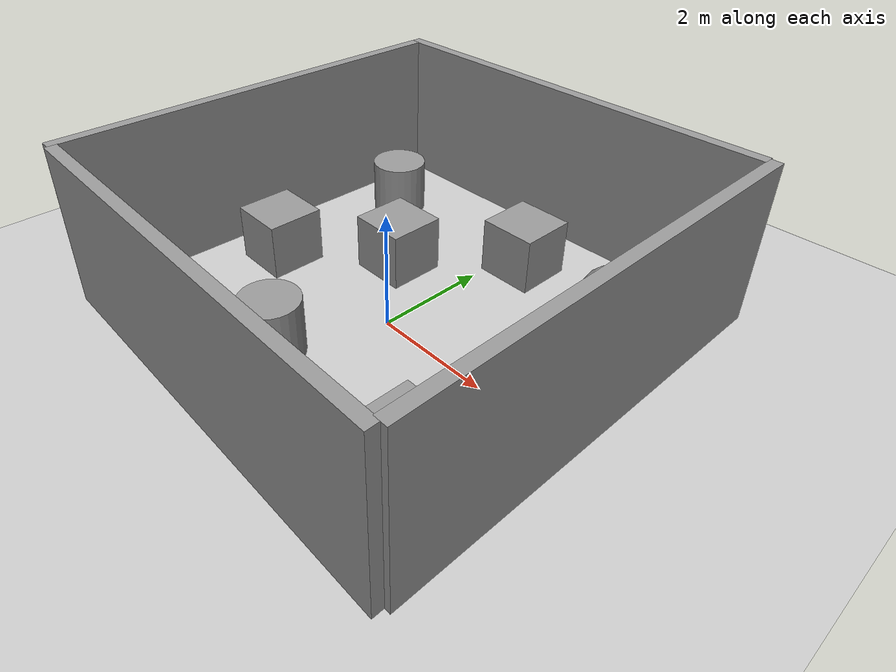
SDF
<sdf version="1.7">
 <world name="default">
  <light name="sun" type="directional">
   <pose>0 0 10 0 -0 0</pose>
   <diffuse>0.8 0.8 0.8 1</diffuse>
   <specular>0.2 0.2 0.2 1</specular>
   <attenuation>
    <range>1000</range>
    <constant>0.9</constant>
    <linear>0.01</linear>
    <quadratic>0.001</quadratic>
   </attenuation>
   <direction>-0.5 0.1 -0.9</direction>
   <spot><inner_angle>0</inner_angle><outer_angle>0</outer_angle><falloff>0</falloff></spot>
  </light>
  <model name="ground_plane">
   <static>1</static>
   <link name="link">
    <collision name="collision">
     <geometry><plane><normal>0 0 1</normal><size>100 100</size></plane></geometry>
     <surface>
      <contact><collide_bitmask>65535</collide_bitmask></contact>
      <friction><ode><mu>100</mu><mu2>50</mu2></ode></friction>
     </surface>
    </collision>
    <visual name="visual">
     <cast_shadows>0</cast_shadows>
     <geometry><plane><normal>0 0 1</normal><size>100 100</size></plane></geometry>
     <material>
      <script><uri>file://media/materials/scripts/gazebo.material</uri><name>Gazebo/Grey</name></script>
     </material>
    </visual>
   </link>
  </model>
  <gravity>0 0 -9.8</gravity>
  <magnetic_field>6e-06 2.3e-05 -4.2e-05</magnetic_field>
  <atmosphere type="adiabatic"/>
  <physics type="ode">
   <max_step_size>0.001</max_step_size>
   <real_time_factor>1</real_time_factor>
   <real_time_update_rate>1000</real_time_update_rate>
  </physics>
  <scene><ambient>0.4 0.4 0.4 1</ambient><background>0.7 0.7 0.7 1</background><shadows>1</shadows></scene>
  <spherical_coordinates>
   <surface_model>EARTH_WGS84</surface_model>
   <latitude_deg>0</latitude_deg>
   <longitude_deg>0</longitude_deg>
   <elevation>0</elevation>
   <heading_deg>0</heading_deg>
  </spherical_coordinates>
  <model name="grey_wall">
   <static>1</static>
   <link name="link">
    <pose>0 0 1.4 0 -0 0</pose>
    <collision name="collision"><geometry><box><size>7.5 0.2 2.8</size></box></geometry></collision>
    <visual name="visual">
     <cast_shadows>0</cast_shadows>
     <geometry><box><size>7.5 0.2 2.8</size></box></geometry>
     <material>
      <script>
       <uri>model://grey_wall/materials/scripts</uri>
       <uri>model://grey_wall/materials/textures</uri>
       <name>vrc/grey_wall</name>
      </script>
     </material>
    </visual>
   </link>
   <pose>-0.137787 -3.25184 0 0 -0 0</pose>
  </model>
  <model name="grey_wall_clone">
   <static>1</static>
   <link name="link">
    <pose>0 0 1.4 0 -0 0</pose>
    <collision name="collision"><geometry><box><size>7.5 0.2 2.8</size></box></geometry></collision>
    <visual name="visual">
     <cast_shadows>0</cast_shadows>
     <geometry><box><size>7.5 0.2 2.8</size></box></geometry>
     <material>
      <script>
       <uri>model://grey_wall/materials/scripts</uri>
       <uri>model://grey_wall/materials/textures</uri>
       <name>vrc/grey_wall</name>
      </script>
     </material>
    </visual>
   </link>
   <pose>-3.93601 0.44335 0 0 0 -1.58129</pose>
  </model>
  <model name="grey_wall_clone_0">
   <static>1</static>
   <link name="link">
    <pose>0 0 1.4 0 -0 0</pose>
    <collision name="collision"><geometry><box><size>7.5 0.2 2.8</size></box></geometry></collision>
    <visual name="visual">
     <cast_shadows>0</cast_shadows>
     <geometry><box><size>7.5 0.2 2.8</size></box></geometry>
     <material>
      <script>
       <uri>model://grey_wall/materials/scripts</uri>
       <uri>model://grey_wall/materials/textures</uri>
       <name>vrc/grey_wall</name>
      </script>
     </material>
    </visual>
   </link>
   <pose>-0.238131 4.2728 0 0 -0 0</pose>
  </model>
  <model name="grey_wall_clone_1">
   <static>1</static>
   <link name="link">
    <pose>0 0 1.4 0 -0 0</pose>
    <collision name="collision"><geometry><box><size>7.5 0.2 2.8</size></box></geometry></collision>
    <visual name="visual">
     <cast_shadows>0</cast_shadows>
     <geometry><box><size>7.5 0.2 2.8</size></box></geometry>
     <material>
      <script>
       <uri>model://grey_wall/materials/scripts</uri>
       <uri>model://grey_wall/materials/textures</uri>
       <name>vrc/grey_wall</name>
      </script>
     </material>
    </visual>
   </link>
   <pose>3.60539 0.581194 0 0 0 -1.57045</pose>
  </model>
  <model name="unit_cylinder">
   <pose>-2.7313 2.69316 0.499997 3e-06 4e-06 -0</pose>
   <link name="link">
    <inertial>
     <mass>1</mass>
     <inertia><ixx>0.145833</ixx><ixy>0</ixy><ixz>0</ixz><iyy>0.145833</iyy><iyz>0</iyz><izz>0.125</izz></inertia>
    </inertial>
    <collision name="collision">
     <geometry><cylinder><radius>0.5</radius><length>1</length></cylinder></geometry>
    </collision>
    <visual name="visual">
     <geometry><cylinder><radius>0.5</radius><length>1</length></cylinder></geometry>
     <material>
      <script><name>Gazebo/Grey</name><uri>file://media/materials/scripts/gazebo.material</uri></script>
     </material>
    </visual>
   </link>
  </model>
  <model name="unit_cylinder_0">
   <pose>2.67169 0.803815 0.499993 -3e-06 -4e-06 -0</pose>
   <link name="link">
    <inertial>
     <mass>1</mass>
     <inertia><ixx>0.145833</ixx><ixy>0</ixy><ixz>0</ixz><iyy>0.145833</iyy><iyz>0</iyz><izz>0.125</izz></inertia>
    </inertial>
    <collision name="collision">
     <geometry><cylinder><radius>0.5</radius><length>1</length></cylinder></geometry>
    </collision>
    <visual name="visual">
     <geometry><cylinder><radius>0.5</radius><length>1</length></cylinder></geometry>
     <material>
      <script><name>Gazebo/Grey</name><uri>file://media/materials/scripts/gazebo.material</uri></script>
     </material>
    </visual>
   </link>
  </model>
  <model name="unit_box">
   <pose>2.47076 -1.85013 0.5 0 -0 0</pose>
   <link name="link">
    <inertial>
     <mass>1</mass>
     <inertia>
      <ixx>0.166667</ixx>
      <ixy>0</ixy>
      <ixz>0</ixz>
      <iyy>0.166667</iyy>
      <iyz>0</iyz>
      <izz>0.166667</izz>
     </inertia>
    </inertial>
    <collision name="collision"><geometry><box><size>1 1 1</size></box></geometry></collision>
    <visual name="visual">
     <geometry><box><size>1 1 1</size></box></geometry>
     <material>
      <script><name>Gazebo/Grey</name><uri>file://media/materials/scripts/gazebo.material</uri></script>
     </material>
    </visual>
   </link>
  </model>
  <model name="unit_box_0">
   <pose>0.45075 2.76634 0.5 0 -0 0</pose>
   <link name="link">
    <inertial>
     <mass>1</mass>
     <inertia>
      <ixx>0.166667</ixx>
      <ixy>0</ixy>
      <ixz>0</ixz>
      <iyy>0.166667</iyy>
      <iyz>0</iyz>
      <izz>0.166667</izz>
     </inertia>
    </inertial>
    <collision name="collision"><geometry><box><size>1 1 1</size></box></geometry></collision>
    <visual name="visual">
     <geometry><box><size>1 1 1</size></box></geometry>
     <material>
      <script><name>Gazebo/Grey</name><uri>file://media/materials/scripts/gazebo.material</uri></script>
     </material>
    </visual>
   </link>
  </model>
  <model name="unit_cylinder_1">
   <pose>-0.655219 -1.7231 0.5 0 -0 0</pose>
   <link name="link">
    <inertial>
     <mass>1</mass>
     <inertia><ixx>0.145833</ixx><ixy>0</ixy><ixz>0</ixz><iyy>0.145833</iyy><iyz>0</iyz><izz>0.125</izz></inertia>
    </inertial>
    <collision name="collision">
     <geometry><cylinder><radius>0.5</radius><length>1</length></cylinder></geometry>
    </collision>
    <visual name="visual">
     <geometry><cylinder><radius>0.5</radius><length>1</length></cylinder></geometry>
     <material>
      <script><name>Gazebo/Grey</name><uri>file://media/materials/scripts/gazebo.material</uri></script>
     </material>
    </visual>
   </link>
  </model>
  <model name="unit_box_1">
   <pose>-2.73602 -0.127022 0.5 0 -0 0</pose>
   <link name="link">
    <inertial>
     <mass>1</mass>
     <inertia>
      <ixx>0.166667</ixx>
      <ixy>0</ixy>
      <ixz>0</ixz>
      <iyy>0.166667</iyy>
      <iyz>0</iyz>
      <izz>0.166667</izz>
     </inertia>
    </inertial>
    <collision name="collision"><geometry><box><size>1 1 1</size></box></geometry></collision>
    <visual name="visual">
     <geometry><box><size>1 1 1</size></box></geometry>
     <material>
      <script><name>Gazebo/Grey</name><uri>file://media/materials/scripts/gazebo.material</uri></script>
     </material>
    </visual>
   </link>
  </model>
  <model name="unit_box_2">
   <pose>-1.11176 1.22031 0.5 0 -0 0</pose>
   <link name="link">
    <inertial>
     <mass>1</mass>
     <inertia>
      <ixx>0.166667</ixx>
      <ixy>0</ixy>
      <ixz>0</ixz>
      <iyy>0.166667</iyy>
      <iyz>0</iyz>
      <izz>0.166667</izz>
     </inertia>
    </inertial>
    <collision name="collision"><geometry><box><size>1 1 1</size></box></geometry></collision>
    <visual name="visual">
     <geometry><box><size>1 1 1</size></box></geometry>
     <material>
      <script><name>Gazebo/Grey</name><uri>file://media/materials/scripts/gazebo.material</uri></script>
     </material>
    </visual>
   </link>
  </model>
  <model name="unit_sphere">
   <pose>2.32446 2.66665 0.5 0 -0 0</pose>
   <link name="link">
    <inertial>
     <mass>1</mass>
     <inertia><ixx>0.1</ixx><ixy>0</ixy><ixz>0</ixz><iyy>0.1</iyy><iyz>0</iyz><izz>0.1</izz></inertia>
    </inertial>
    <collision name="collision"><geometry><sphere><radius>0.5</radius></sphere></geometry></collision>
    <visual name="visual">
     <geometry><sphere><radius>0.5</radius></sphere></geometry>
     <material>
      <script><name>Gazebo/Grey</name><uri>file://media/materials/scripts/gazebo.material</uri></script>
     </material>
    </visual>
   </link>
  </model>
 </world>
</sdf>
